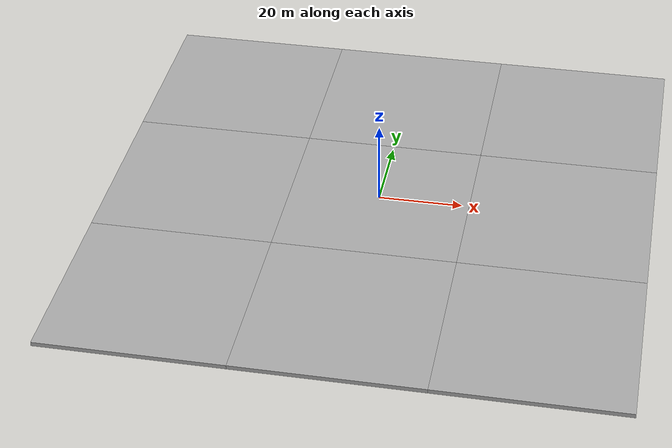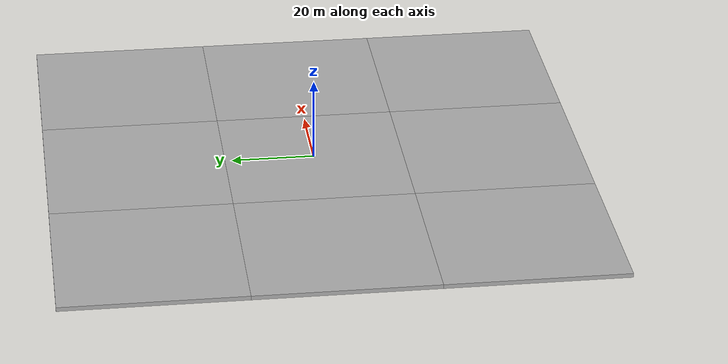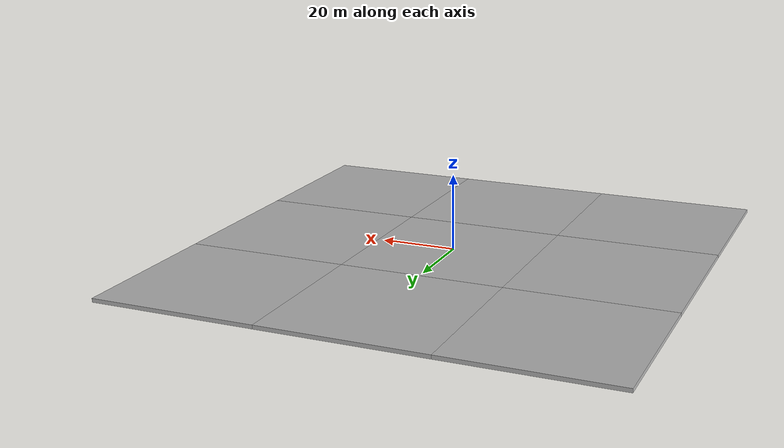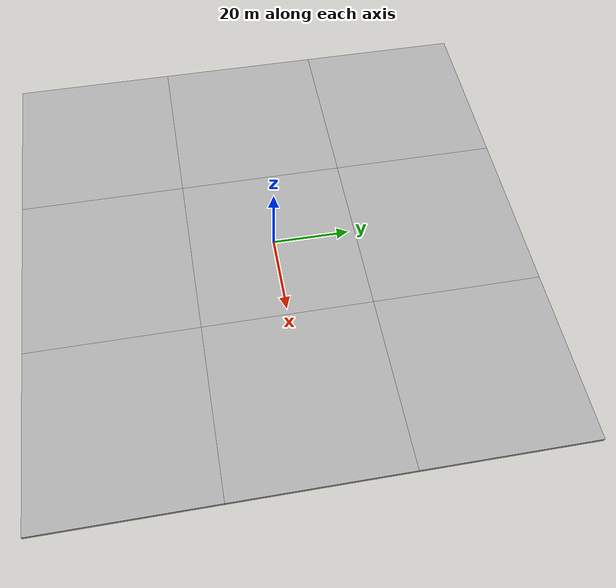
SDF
<?xml version="1.0" ?>
<sdf version="1.6">
  <world name="real_world_map">

    <!-- Include your custom map model -->
    <include>
      <uri>model://map_satellite_24.787961_121.001371_100_100</uri>
      <name>map_satellite_24.787961_121.001371_100_100</name>
      <pose>0 0 0 0 0 0</pose>
    </include>

    <!-- Sun for lighting -->
    <include>
      <uri>model://sun</uri>
    </include>

    <!-- Physics settings -->
    <physics name="default_physics" type="ode">
      <gravity>0 0 -9.81</gravity>
    </physics>

  </world>
</sdf>

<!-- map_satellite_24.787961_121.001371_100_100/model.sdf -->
<sdf version='1.7'>
<model name='map_satellite_24.787961_121.001371_100_100'>
  <static>true</static>
  <link name='link'>
    <collision name='collision'>
      <pose>0 0 -0.5 0 0 0</pose>
      <geometry>
        <box>
          <size>130.115 130.115 1</size>
        </box>
      </geometry>
    </collision>
    <visual name='visual0_0'>
      <pose>-43.3716 43.3716 -0.5 0 0 1.5708</pose>
      <geometry>
        <box>
          <size>43.3716 43.3716 1</size>
        </box>
      </geometry>
      <material>
        <script>
          <uri>model://map_satellite_24.787961_121.001371_100_100/materials/scripts</uri>
          <uri>model://map_satellite_24.787961_121.001371_100_100/materials/textures</uri>
          <name>map_satellite_24.787961_121.001371_100_100/0_0</name>
        </script>
      </material>
    </visual>
    <visual name='visual0_1'>
      <pose>0 43.3716 -0.5 0 0 1.5708</pose>
      <geometry>
        <box>
          <size>43.3716 43.3716 1</size>
        </box>
      </geometry>
      <material>
        <script>
          <uri>model://map_satellite_24.787961_121.001371_100_100/materials/scripts</uri>
          <uri>model://map_satellite_24.787961_121.001371_100_100/materials/textures</uri>
          <name>map_satellite_24.787961_121.001371_100_100/0_1</name>
        </script>
      </material>
    </visual>
    <visual name='visual0_2'>
      <pose>43.3716 43.3716 -0.5 0 0 1.5708</pose>
      <geometry>
        <box>
          <size>43.3716 43.3716 1</size>
        </box>
      </geometry>
      <material>
        <script>
          <uri>model://map_satellite_24.787961_121.001371_100_100/materials/scripts</uri>
          <uri>model://map_satellite_24.787961_121.001371_100_100/materials/textures</uri>
          <name>map_satellite_24.787961_121.001371_100_100/0_2</name>
        </script>
      </material>
    </visual>
    <visual name='visual1_0'>
      <pose>-43.3716 0 -0.5 0 0 1.5708</pose>
      <geometry>
        <box>
          <size>43.3716 43.3716 1</size>
        </box>
      </geometry>
      <material>
        <script>
          <uri>model://map_satellite_24.787961_121.001371_100_100/materials/scripts</uri>
          <uri>model://map_satellite_24.787961_121.001371_100_100/materials/textures</uri>
          <name>map_satellite_24.787961_121.001371_100_100/1_0</name>
        </script>
      </material>
    </visual>
    <visual name='visual1_1'>
      <pose>0 0 -0.5 0 0 1.5708</pose>
      <geometry>
        <box>
          <size>43.3716 43.3716 1</size>
        </box>
      </geometry>
      <material>
        <script>
          <uri>model://map_satellite_24.787961_121.001371_100_100/materials/scripts</uri>
          <uri>model://map_satellite_24.787961_121.001371_100_100/materials/textures</uri>
          <name>map_satellite_24.787961_121.001371_100_100/1_1</name>
        </script>
      </material>
    </visual>
    <visual name='visual1_2'>
      <pose>43.3716 0 -0.5 0 0 1.5708</pose>
      <geometry>
        <box>
          <size>43.3716 43.3716 1</size>
        </box>
      </geometry>
      <material>
        <script>
          <uri>model://map_satellite_24.787961_121.001371_100_100/materials/scripts</uri>
          <uri>model://map_satellite_24.787961_121.001371_100_100/materials/textures</uri>
          <name>map_satellite_24.787961_121.001371_100_100/1_2</name>
        </script>
      </material>
    </visual>
    <visual name='visual2_0'>
      <pose>-43.3716 -43.3716 -0.5 0 0 1.5708</pose>
      <geometry>
        <box>
          <size>43.3716 43.3716 1</size>
        </box>
      </geometry>
      <material>
        <script>
          <uri>model://map_satellite/materials/scripts</uri>
          <uri>model://map_satellite/materials/textures</uri>
          <name>map_satellite_24.787961_121.001371_100_100/2_0</name>
        </script>
      </material>
    </visual>
    <visual name='visual2_1'>
      <pose>0 -43.3716 -0.5 0 0 1.5708</pose>
      <geometry>
        <box>
          <size>43.3716 43.3716 1</size>
        </box>
      </geometry>
      <material>
        <script>
          <uri>model://map_satellite_24.787961_121.001371_100_100/materials/scripts</uri>
          <uri>model://map_satellite_24.787961_121.001371_100_100/materials/textures</uri>
          <name>map_satellite_24.787961_121.001371_100_100/2_1</name>
        </script>
      </material>
    </visual>
    <visual name='visual2_2'>
      <pose>43.3716 -43.3716 -0.5 0 0 1.5708</pose>
      <geometry>
        <box>
          <size>43.3716 43.3716 1</size>
        </box>
      </geometry>
      <material>
        <script>
          <uri>model://map_satellite_24.787961_121.001371_100_100/materials/scripts</uri>
          <uri>model://map_satellite_24.787961_121.001371_100_100/materials/textures</uri>
          <name>map_satellite_24.787961_121.001371_100_100/2_2</name>
        </script>
      </material>
    </visual>
  </link>
</model>
</sdf>
